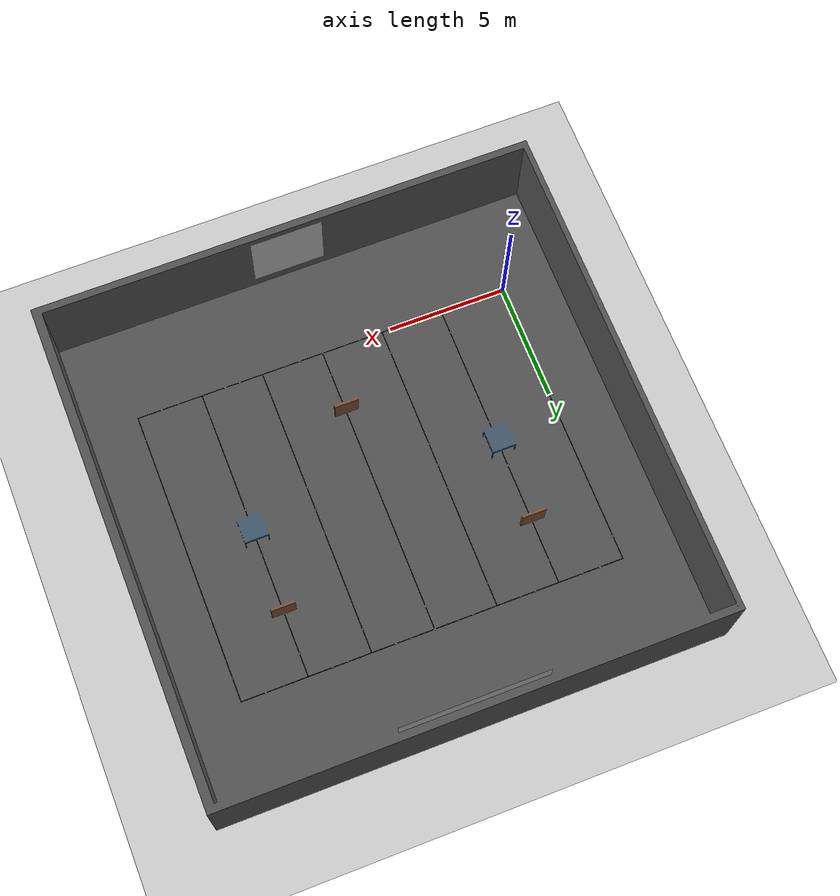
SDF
<?xml version="1.0"?>
<sdf version="1.4">
  <world name="default">
    <include>
      <uri>model://ground_plane</uri>
    </include>
    <include>
      <uri>model://sun</uri>
    </include>
    <model name="my_mesh">
      <pose>0 0 0.02  0 0 0</pose>
      <static>true</static>
      <link name="body">
        <visual name="visual">
          <geometry>
            <mesh>

            	<uri>//2023_teknofest.dae</uri>
            </mesh>
          </geometry>
        </visual>

        <collision name="collision">
          <geometry>
            <mesh>

            	<uri>//2023_teknofest.dae</uri>
            </mesh>
          </geometry>
        </collision>

      </link>
    </model>

    <model name="my_mesh1">
      <pose>0 0 0.021  0 0 0</pose>
      <static>true</static>
      <link name="body">
        <visual name="visual">
          <geometry>
            <mesh>

            	<uri>/home/kutay/catkin_ws/src/yeni_arac_desc/worlds/qrs/onl_qrs.dae</uri>
            </mesh>
          </geometry>
        </visual>

      </link>
    </model>
  </world>
</sdf>
